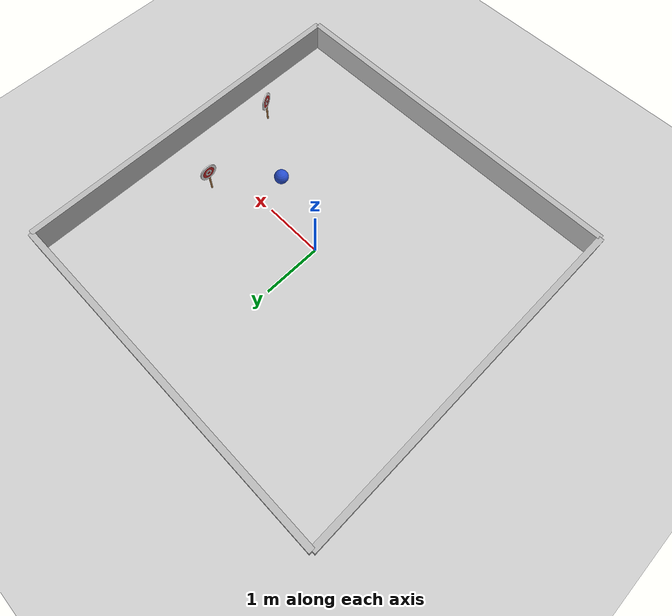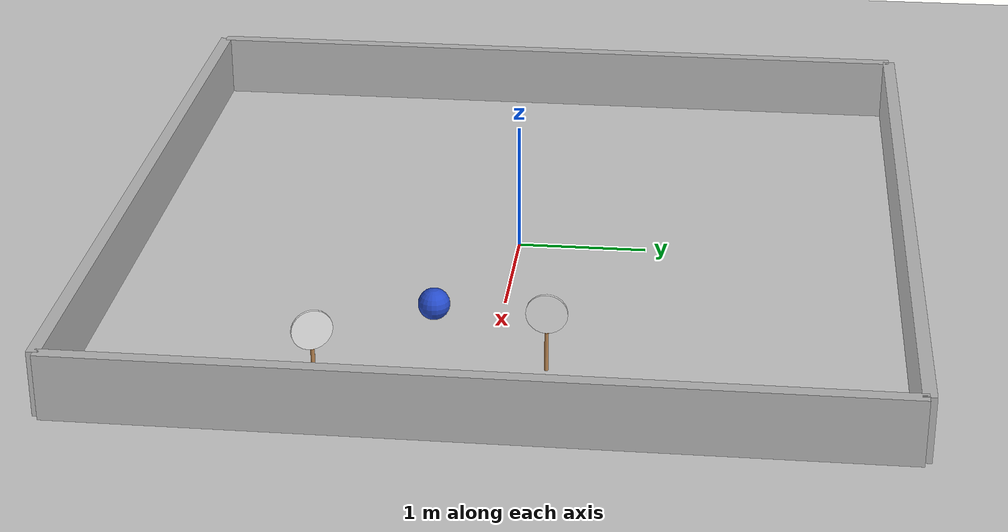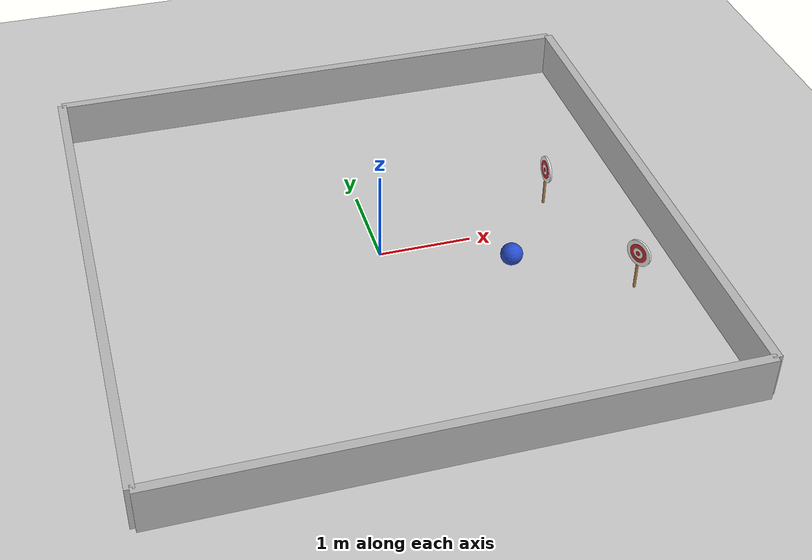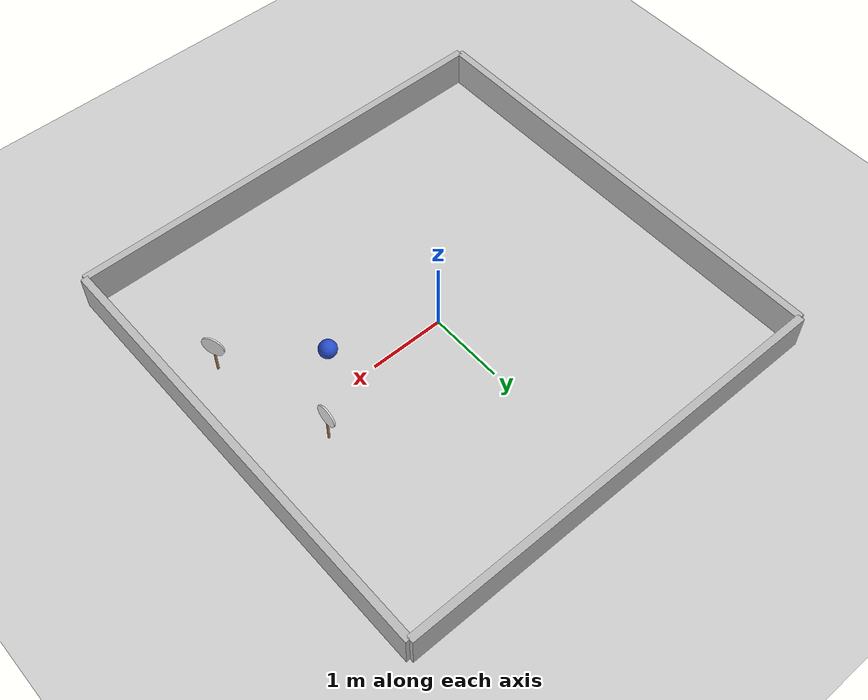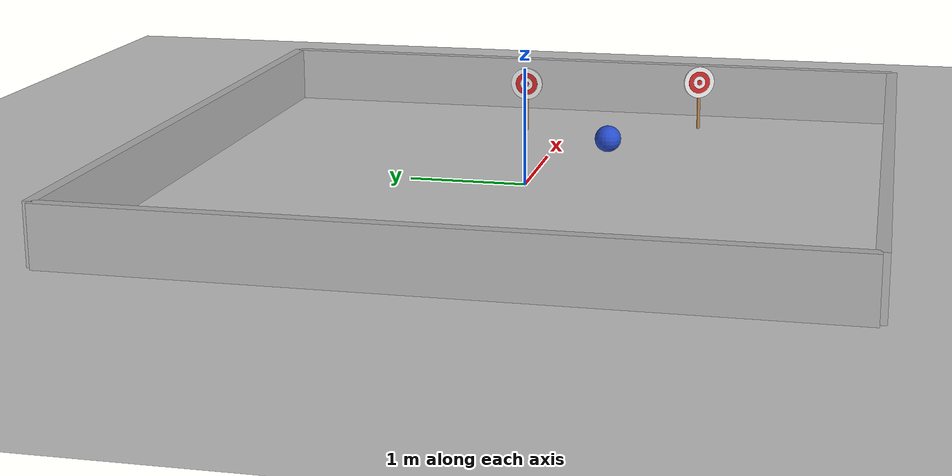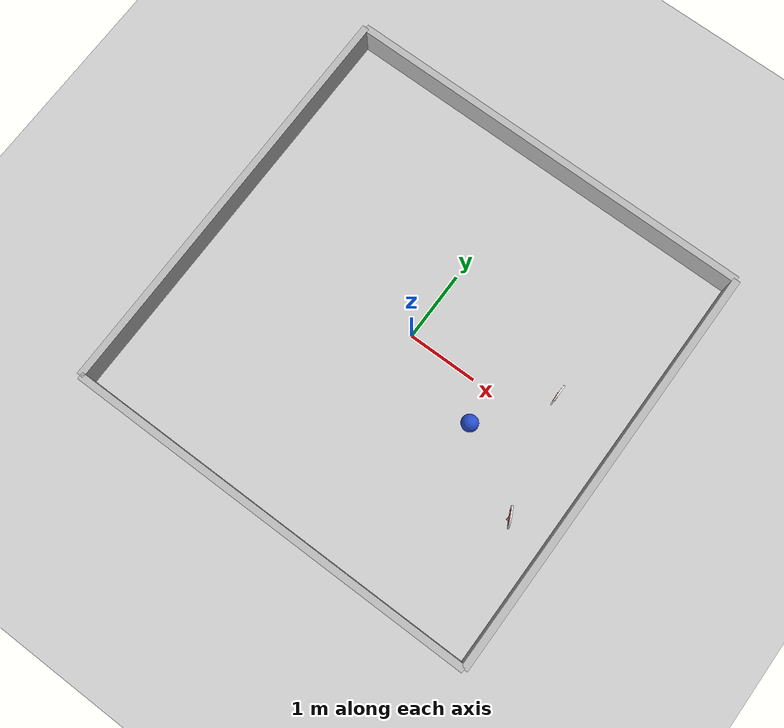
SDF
<?xml version="1.0"?>
<!--
  Mundo de teste do Robo Sniper: sala 6 x 6 m (paredes para o lidar), dois alvos de tiro
  (aneis vermelho/branco virados para o robo, que nasce na origem olhando para +x) e uma bola azul.
-->
<sdf version="1.6">
  <world name="alvos">
    <include><uri>model://ground_plane</uri></include>
    <include><uri>model://sun</uri></include>

    <model name="paredes">
      <static>true</static>
      <link name="link">
        <collision name="c_norte"><pose>3 0 0.25 0 0 0</pose><geometry><box><size>0.1 6 0.5</size></box></geometry></collision>
        <visual name="v_norte"><pose>3 0 0.25 0 0 0</pose><geometry><box><size>0.1 6 0.5</size></box></geometry></visual>
        <collision name="c_sul"><pose>-3 0 0.25 0 0 0</pose><geometry><box><size>0.1 6 0.5</size></box></geometry></collision>
        <visual name="v_sul"><pose>-3 0 0.25 0 0 0</pose><geometry><box><size>0.1 6 0.5</size></box></geometry></visual>
        <collision name="c_leste"><pose>0 -3 0.25 0 0 0</pose><geometry><box><size>6 0.1 0.5</size></box></geometry></collision>
        <visual name="v_leste"><pose>0 -3 0.25 0 0 0</pose><geometry><box><size>6 0.1 0.5</size></box></geometry></visual>
        <collision name="c_oeste"><pose>0 3 0.25 0 0 0</pose><geometry><box><size>6 0.1 0.5</size></box></geometry></collision>
        <visual name="v_oeste"><pose>0 3 0.25 0 0 0</pose><geometry><box><size>6 0.1 0.5</size></box></geometry></visual>
      </link>
    </model>

    <!-- alvo: poste + aneis (discos empilhados, o menor mais a frente) -->
    <model name="alvo_1">
      <static>true</static>
      <pose>2.0 0.4 0 0 0 0</pose>
      <link name="link">
        <collision name="poste"><pose>0 0 0.15 0 0 0</pose><geometry><cylinder><radius>0.015</radius><length>0.3</length></cylinder></geometry></collision>
        <visual name="poste"><pose>0 0 0.15 0 0 0</pose><geometry><cylinder><radius>0.015</radius><length>0.3</length></cylinder></geometry>
          <material><script><uri>file://media/materials/scripts/gazebo.material</uri><name>Gazebo/Wood</name></script></material></visual>
        <collision name="disco"><pose>0 0 0.45 0 1.5708 0</pose><geometry><cylinder><radius>0.15</radius><length>0.02</length></cylinder></geometry></collision>
        <visual name="anel_1"><pose>0 0 0.45 0 1.5708 0</pose><geometry><cylinder><radius>0.15</radius><length>0.02</length></cylinder></geometry>
          <material><script><uri>file://media/materials/scripts/gazebo.material</uri><name>Gazebo/White</name></script></material></visual>
        <visual name="anel_2"><pose>-0.003 0 0.45 0 1.5708 0</pose><geometry><cylinder><radius>0.105</radius><length>0.02</length></cylinder></geometry>
          <material><script><uri>file://media/materials/scripts/gazebo.material</uri><name>Gazebo/Red</name></script></material></visual>
        <visual name="anel_3"><pose>-0.006 0 0.45 0 1.5708 0</pose><geometry><cylinder><radius>0.06</radius><length>0.02</length></cylinder></geometry>
          <material><script><uri>file://media/materials/scripts/gazebo.material</uri><name>Gazebo/White</name></script></material></visual>
        <visual name="mosca"><pose>-0.009 0 0.45 0 1.5708 0</pose><geometry><cylinder><radius>0.025</radius><length>0.02</length></cylinder></geometry>
          <material><script><uri>file://media/materials/scripts/gazebo.material</uri><name>Gazebo/Red</name></script></material></visual>
      </link>
    </model>

    <model name="alvo_2">
      <static>true</static>
      <pose>2.4 -1.2 0 0 0 0.45</pose>
      <link name="link">
        <collision name="poste"><pose>0 0 0.15 0 0 0</pose><geometry><cylinder><radius>0.015</radius><length>0.3</length></cylinder></geometry></collision>
        <visual name="poste"><pose>0 0 0.15 0 0 0</pose><geometry><cylinder><radius>0.015</radius><length>0.3</length></cylinder></geometry>
          <material><script><uri>file://media/materials/scripts/gazebo.material</uri><name>Gazebo/Wood</name></script></material></visual>
        <collision name="disco"><pose>0 0 0.45 0 1.5708 0</pose><geometry><cylinder><radius>0.15</radius><length>0.02</length></cylinder></geometry></collision>
        <visual name="anel_1"><pose>0 0 0.45 0 1.5708 0</pose><geometry><cylinder><radius>0.15</radius><length>0.02</length></cylinder></geometry>
          <material><script><uri>file://media/materials/scripts/gazebo.material</uri><name>Gazebo/White</name></script></material></visual>
        <visual name="anel_2"><pose>-0.003 0 0.45 0 1.5708 0</pose><geometry><cylinder><radius>0.105</radius><length>0.02</length></cylinder></geometry>
          <material><script><uri>file://media/materials/scripts/gazebo.material</uri><name>Gazebo/Red</name></script></material></visual>
        <visual name="anel_3"><pose>-0.006 0 0.45 0 1.5708 0</pose><geometry><cylinder><radius>0.06</radius><length>0.02</length></cylinder></geometry>
          <material><script><uri>file://media/materials/scripts/gazebo.material</uri><name>Gazebo/White</name></script></material></visual>
        <visual name="mosca"><pose>-0.009 0 0.45 0 1.5708 0</pose><geometry><cylinder><radius>0.025</radius><length>0.02</length></cylinder></geometry>
          <material><script><uri>file://media/materials/scripts/gazebo.material</uri><name>Gazebo/Red</name></script></material></visual>
      </link>
    </model>

    <model name="bola">
      <pose>1.3 -0.5 0.12 0 0 0</pose>
      <link name="link">
        <inertial><mass>0.2</mass><inertia><ixx>0.0012</ixx><iyy>0.0012</iyy><izz>0.0012</izz></inertia></inertial>
        <collision name="c"><geometry><sphere><radius>0.12</radius></sphere></geometry></collision>
        <visual name="v"><geometry><sphere><radius>0.12</radius></sphere></geometry>
          <material><script><uri>file://media/materials/scripts/gazebo.material</uri><name>Gazebo/Blue</name></script></material></visual>
      </link>
    </model>
  </world>
</sdf>
